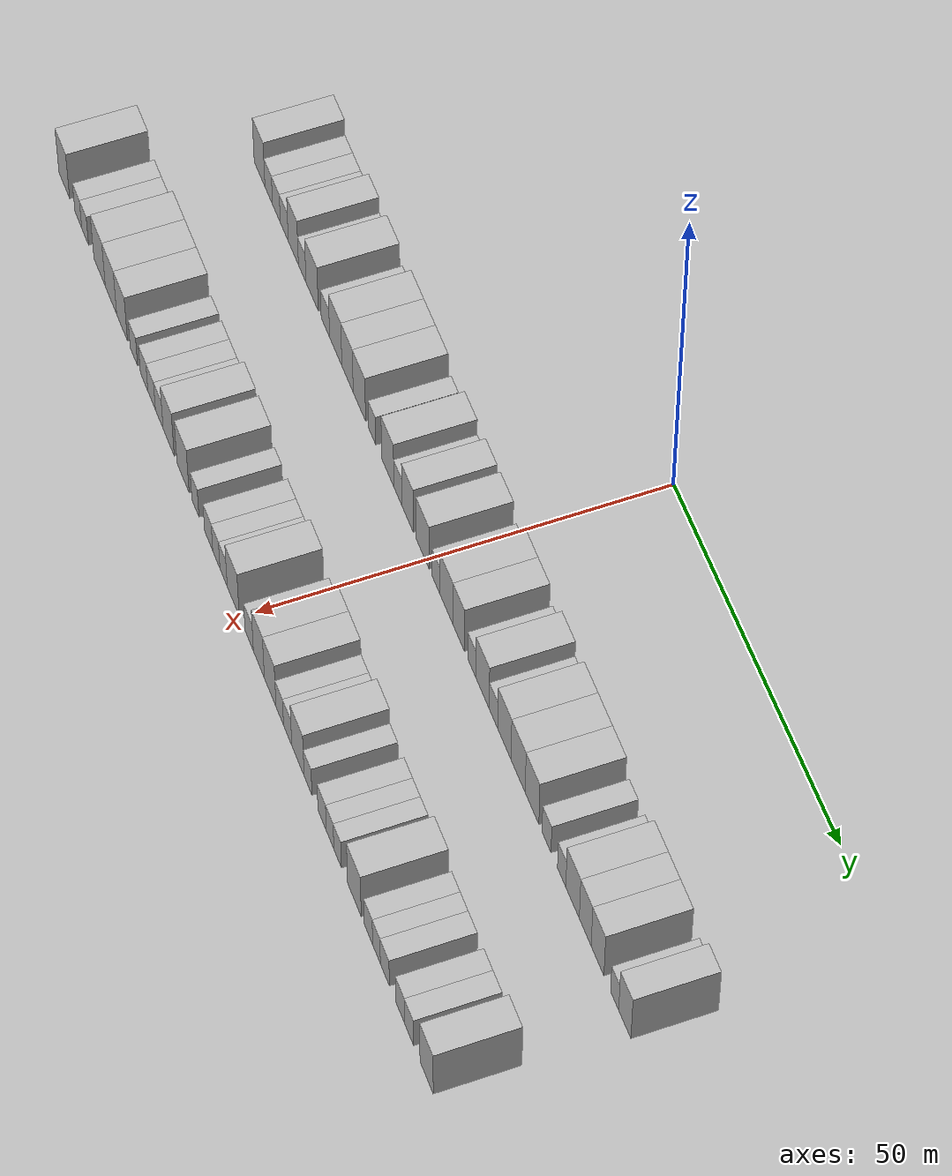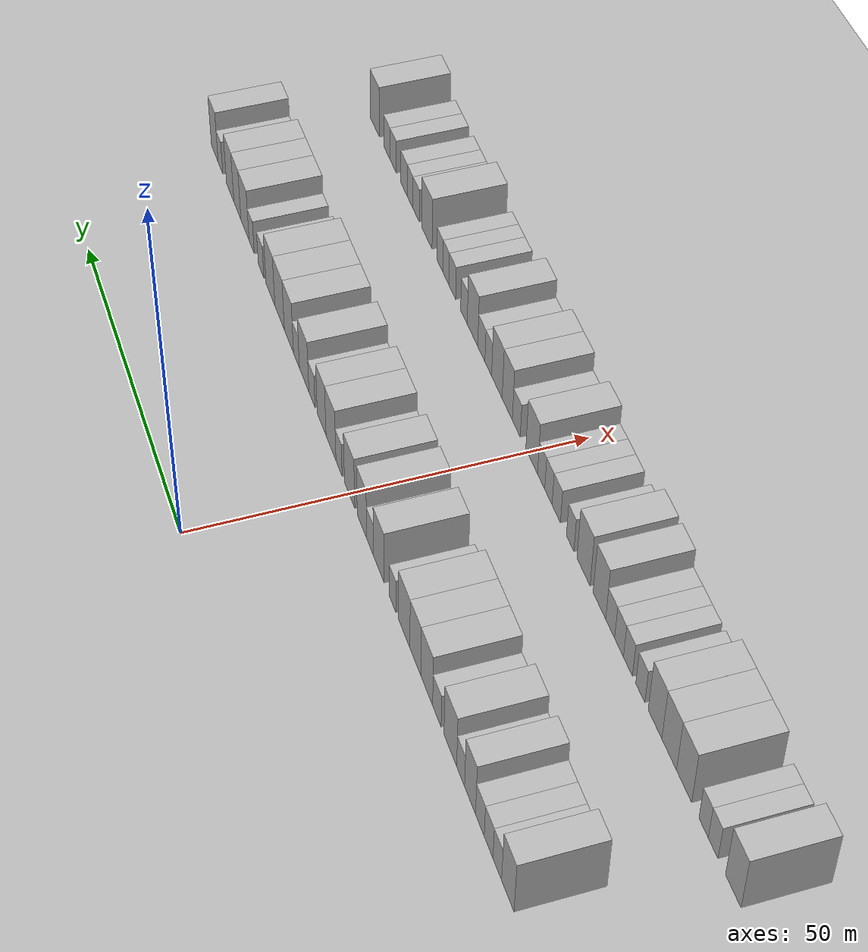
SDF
<sdf version="1.6">
 <world name="default">
  <include><name>ground_plane_1</name><uri>model://HANNAS_ground_plane</uri></include>
  <include>
   <name>ground_plane_2</name>
   <uri>model://HANNAS_ground_plane</uri>
   <pose>100 0 0  0 0 0</pose>
  </include>
  <model name="building_35">
   <static>1</static>
   <pose>25.0000 -57.1080 0 0.000000 0.000000 0.000000</pose>
   <link name="link">
    <pose>0 0 4.50 0 0 0</pose>
    <collision name="collision"><geometry><box><size>10.0000 3.8637 9.0000</size></box></geometry></collision>
    <visual name="visual">
     <cast_shadows>0</cast_shadows>
     <geometry><box><size>10.0000 3.8637 9.0000</size></box></geometry>
     <material>
      <script>
       <uri>model://HANNAS_wall/materials/scripts</uri>
       <uri>model://HANNAS_wall/materials/textures</uri>
       <name>vrc/HANNAS_wall</name>
      </script>
     </material>
    </visual>
   </link>
  </model>
  <model name="building_36">
   <static>1</static>
   <pose>25.0000 -53.8150 0 0.000000 0.000000 0.000000</pose>
   <link name="link">
    <pose>0 0 3.00 0 0 0</pose>
    <collision name="collision"><geometry><box><size>10.0000 2.7222 6.0000</size></box></geometry></collision>
    <visual name="visual">
     <cast_shadows>0</cast_shadows>
     <geometry><box><size>10.0000 2.7222 6.0000</size></box></geometry>
     <material>
      <script>
       <uri>model://HANNAS_wall/materials/scripts</uri>
       <uri>model://HANNAS_wall/materials/textures</uri>
       <name>vrc/HANNAS_wall</name>
      </script>
     </material>
    </visual>
   </link>
  </model>
  <model name="building_37">
   <static>1</static>
   <pose>25.0000 -51.0576 0 0.000000 0.000000 0.000000</pose>
   <link name="link">
    <pose>0 0 3.00 0 0 0</pose>
    <collision name="collision"><geometry><box><size>10.0000 2.7926 6.0000</size></box></geometry></collision>
    <visual name="visual">
     <cast_shadows>0</cast_shadows>
     <geometry><box><size>10.0000 2.7926 6.0000</size></box></geometry>
     <material>
      <script>
       <uri>model://HANNAS_wall/materials/scripts</uri>
       <uri>model://HANNAS_wall/materials/textures</uri>
       <name>vrc/HANNAS_wall</name>
      </script>
     </material>
    </visual>
   </link>
  </model>
  <model name="building_38">
   <static>1</static>
   <pose>25.0000 -48.2400 0 0.000000 0.000000 0.000000</pose>
   <link name="link">
    <pose>0 0 3.00 0 0 0</pose>
    <collision name="collision"><geometry><box><size>10.0000 2.8425 6.0000</size></box></geometry></collision>
    <visual name="visual">
     <cast_shadows>0</cast_shadows>
     <geometry><box><size>10.0000 2.8425 6.0000</size></box></geometry>
     <material>
      <script>
       <uri>model://HANNAS_wall/materials/scripts</uri>
       <uri>model://HANNAS_wall/materials/textures</uri>
       <name>vrc/HANNAS_wall</name>
      </script>
     </material>
    </visual>
   </link>
  </model>
  <model name="building_39">
   <static>1</static>
   <pose>25.0000 -45.0187 0 0.000000 0.000000 0.000000</pose>
   <link name="link">
    <pose>0 0 4.50 0 0 0</pose>
    <collision name="collision"><geometry><box><size>10.0000 3.6001 9.0000</size></box></geometry></collision>
    <visual name="visual">
     <cast_shadows>0</cast_shadows>
     <geometry><box><size>10.0000 3.6001 9.0000</size></box></geometry>
     <material>
      <script>
       <uri>model://HANNAS_wall/materials/scripts</uri>
       <uri>model://HANNAS_wall/materials/textures</uri>
       <name>vrc/HANNAS_wall</name>
      </script>
     </material>
    </visual>
   </link>
  </model>
  <model name="building_40">
   <static>1</static>
   <pose>25.0000 -41.8844 0 0.000000 0.000000 0.000000</pose>
   <link name="link">
    <pose>0 0 3.00 0 0 0</pose>
    <collision name="collision"><geometry><box><size>10.0000 2.6685 6.0000</size></box></geometry></collision>
    <visual name="visual">
     <cast_shadows>0</cast_shadows>
     <geometry><box><size>10.0000 2.6685 6.0000</size></box></geometry>
     <material>
      <script>
       <uri>model://HANNAS_wall/materials/scripts</uri>
       <uri>model://HANNAS_wall/materials/textures</uri>
       <name>vrc/HANNAS_wall</name>
      </script>
     </material>
    </visual>
   </link>
  </model>
  <model name="building_41">
   <static>1</static>
   <pose>25.0000 -38.3859 0 0.000000 0.000000 0.000000</pose>
   <link name="link">
    <pose>0 0 4.50 0 0 0</pose>
    <collision name="collision"><geometry><box><size>10.0000 4.3285 9.0000</size></box></geometry></collision>
    <visual name="visual">
     <cast_shadows>0</cast_shadows>
     <geometry><box><size>10.0000 4.3285 9.0000</size></box></geometry>
     <material>
      <script>
       <uri>model://HANNAS_wall/materials/scripts</uri>
       <uri>model://HANNAS_wall/materials/textures</uri>
       <name>vrc/HANNAS_wall</name>
      </script>
     </material>
    </visual>
   </link>
  </model>
  <model name="building_42">
   <static>1</static>
   <pose>25.0000 -33.7441 0 0.000000 0.000000 0.000000</pose>
   <link name="link">
    <pose>0 0 3.00 0 0 0</pose>
    <collision name="collision"><geometry><box><size>10.0000 2.9551 6.0000</size></box></geometry></collision>
    <visual name="visual">
     <cast_shadows>0</cast_shadows>
     <geometry><box><size>10.0000 2.9551 6.0000</size></box></geometry>
     <material>
      <script>
       <uri>model://HANNAS_wall/materials/scripts</uri>
       <uri>model://HANNAS_wall/materials/textures</uri>
       <name>vrc/HANNAS_wall</name>
      </script>
     </material>
    </visual>
   </link>
  </model>
  <model name="building_43">
   <static>1</static>
   <pose>25.0000 -30.1479 0 0.000000 0.000000 0.000000</pose>
   <link name="link">
    <pose>0 0 4.50 0 0 0</pose>
    <collision name="collision"><geometry><box><size>10.0000 4.2372 9.0000</size></box></geometry></collision>
    <visual name="visual">
     <cast_shadows>0</cast_shadows>
     <geometry><box><size>10.0000 4.2372 9.0000</size></box></geometry>
     <material>
      <script>
       <uri>model://HANNAS_wall/materials/scripts</uri>
       <uri>model://HANNAS_wall/materials/textures</uri>
       <name>vrc/HANNAS_wall</name>
      </script>
     </material>
    </visual>
   </link>
  </model>
  <model name="building_44">
   <static>1</static>
   <pose>25.0000 -26.0718 0 0.000000 0.000000 0.000000</pose>
   <link name="link">
    <pose>0 0 4.50 0 0 0</pose>
    <collision name="collision"><geometry><box><size>10.0000 3.9150 9.0000</size></box></geometry></collision>
    <visual name="visual">
     <cast_shadows>0</cast_shadows>
     <geometry><box><size>10.0000 3.9150 9.0000</size></box></geometry>
     <material>
      <script>
       <uri>model://HANNAS_wall/materials/scripts</uri>
       <uri>model://HANNAS_wall/materials/textures</uri>
       <name>vrc/HANNAS_wall</name>
      </script>
     </material>
    </visual>
   </link>
  </model>
  <model name="building_45">
   <static>1</static>
   <pose>25.0000 -21.9916 0 0.000000 0.000000 0.000000</pose>
   <link name="link">
    <pose>0 0 4.50 0 0 0</pose>
    <collision name="collision"><geometry><box><size>10.0000 4.2454 9.0000</size></box></geometry></collision>
    <visual name="visual">
     <cast_shadows>0</cast_shadows>
     <geometry><box><size>10.0000 4.2454 9.0000</size></box></geometry>
     <material>
      <script>
       <uri>model://HANNAS_wall/materials/scripts</uri>
       <uri>model://HANNAS_wall/materials/textures</uri>
       <name>vrc/HANNAS_wall</name>
      </script>
     </material>
    </visual>
   </link>
  </model>
  <model name="building_46">
   <static>1</static>
   <pose>25.0000 -17.6397 0 0.000000 0.000000 0.000000</pose>
   <link name="link">
    <pose>0 0 3.00 0 0 0</pose>
    <collision name="collision"><geometry><box><size>10.0000 2.4583 6.0000</size></box></geometry></collision>
    <visual name="visual">
     <cast_shadows>0</cast_shadows>
     <geometry><box><size>10.0000 2.4583 6.0000</size></box></geometry>
     <material>
      <script>
       <uri>model://HANNAS_wall/materials/scripts</uri>
       <uri>model://HANNAS_wall/materials/textures</uri>
       <name>vrc/HANNAS_wall</name>
      </script>
     </material>
    </visual>
   </link>
  </model>
  <model name="building_47">
   <static>1</static>
   <pose>25.0000 -12.3555 0 0.000000 0.000000 0.000000</pose>
   <link name="link">
    <pose>0 0 4.50 0 0 0</pose>
    <collision name="collision"><geometry><box><size>10.0000 4.1102 9.0000</size></box></geometry></collision>
    <visual name="visual">
     <cast_shadows>0</cast_shadows>
     <geometry><box><size>10.0000 4.1102 9.0000</size></box></geometry>
     <material>
      <script>
       <uri>model://HANNAS_wall/materials/scripts</uri>
       <uri>model://HANNAS_wall/materials/textures</uri>
       <name>vrc/HANNAS_wall</name>
      </script>
     </material>
    </visual>
   </link>
  </model>
  <model name="building_48">
   <static>1</static>
   <pose>25.0000 -8.9529 0 0.000000 0.000000 0.000000</pose>
   <link name="link">
    <pose>0 0 3.00 0 0 0</pose>
    <collision name="collision"><geometry><box><size>10.0000 2.6950 6.0000</size></box></geometry></collision>
    <visual name="visual">
     <cast_shadows>0</cast_shadows>
     <geometry><box><size>10.0000 2.6950 6.0000</size></box></geometry>
     <material>
      <script>
       <uri>model://HANNAS_wall/materials/scripts</uri>
       <uri>model://HANNAS_wall/materials/textures</uri>
       <name>vrc/HANNAS_wall</name>
      </script>
     </material>
    </visual>
   </link>
  </model>
  <model name="building_49">
   <static>1</static>
   <pose>25.0000 -5.7064 0 0.000000 0.000000 0.000000</pose>
   <link name="link">
    <pose>0 0 4.50 0 0 0</pose>
    <collision name="collision"><geometry><box><size>10.0000 3.7981 9.0000</size></box></geometry></collision>
    <visual name="visual">
     <cast_shadows>0</cast_shadows>
     <geometry><box><size>10.0000 3.7981 9.0000</size></box></geometry>
     <material>
      <script>
       <uri>model://HANNAS_wall/materials/scripts</uri>
       <uri>model://HANNAS_wall/materials/textures</uri>
       <name>vrc/HANNAS_wall</name>
      </script>
     </material>
    </visual>
   </link>
  </model>
  <model name="building_50">
   <static>1</static>
   <pose>25.0000 -0.6873 0 0.000000 0.000000 0.000000</pose>
   <link name="link">
    <pose>0 0 4.50 0 0 0</pose>
    <collision name="collision"><geometry><box><size>10.0000 4.2400 9.0000</size></box></geometry></collision>
    <visual name="visual">
     <cast_shadows>0</cast_shadows>
     <geometry><box><size>10.0000 4.2400 9.0000</size></box></geometry>
     <material>
      <script>
       <uri>model://HANNAS_wall/materials/scripts</uri>
       <uri>model://HANNAS_wall/materials/textures</uri>
       <name>vrc/HANNAS_wall</name>
      </script>
     </material>
    </visual>
   </link>
  </model>
  <model name="building_51">
   <static>1</static>
   <pose>25.0000 3.7216 0 0.000000 0.000000 0.000000</pose>
   <link name="link">
    <pose>0 0 3.00 0 0 0</pose>
    <collision name="collision"><geometry><box><size>10.0000 2.5778 6.0000</size></box></geometry></collision>
    <visual name="visual">
     <cast_shadows>0</cast_shadows>
     <geometry><box><size>10.0000 2.5778 6.0000</size></box></geometry>
     <material>
      <script>
       <uri>model://HANNAS_wall/materials/scripts</uri>
       <uri>model://HANNAS_wall/materials/textures</uri>
       <name>vrc/HANNAS_wall</name>
      </script>
     </material>
    </visual>
   </link>
  </model>
  <model name="building_52">
   <static>1</static>
   <pose>25.0000 7.1169 0 0.000000 0.000000 0.000000</pose>
   <link name="link">
    <pose>0 0 4.50 0 0 0</pose>
    <collision name="collision"><geometry><box><size>10.0000 4.2129 9.0000</size></box></geometry></collision>
    <visual name="visual">
     <cast_shadows>0</cast_shadows>
     <geometry><box><size>10.0000 4.2129 9.0000</size></box></geometry>
     <material>
      <script>
       <uri>model://HANNAS_wall/materials/scripts</uri>
       <uri>model://HANNAS_wall/materials/textures</uri>
       <name>vrc/HANNAS_wall</name>
      </script>
     </material>
    </visual>
   </link>
  </model>
  <model name="building_53">
   <static>1</static>
   <pose>25.0000 11.1153 0 0.000000 0.000000 0.000000</pose>
   <link name="link">
    <pose>0 0 4.50 0 0 0</pose>
    <collision name="collision"><geometry><box><size>10.0000 3.7839 9.0000</size></box></geometry></collision>
    <visual name="visual">
     <cast_shadows>0</cast_shadows>
     <geometry><box><size>10.0000 3.7839 9.0000</size></box></geometry>
     <material>
      <script>
       <uri>model://HANNAS_wall/materials/scripts</uri>
       <uri>model://HANNAS_wall/materials/textures</uri>
       <name>vrc/HANNAS_wall</name>
      </script>
     </material>
    </visual>
   </link>
  </model>
  <model name="building_54">
   <static>1</static>
   <pose>25.0000 15.3685 0 0.000000 0.000000 0.000000</pose>
   <link name="link">
    <pose>0 0 3.00 0 0 0</pose>
    <collision name="collision"><geometry><box><size>10.0000 2.7225 6.0000</size></box></geometry></collision>
    <visual name="visual">
     <cast_shadows>0</cast_shadows>
     <geometry><box><size>10.0000 2.7225 6.0000</size></box></geometry>
     <material>
      <script>
       <uri>model://HANNAS_wall/materials/scripts</uri>
       <uri>model://HANNAS_wall/materials/textures</uri>
       <name>vrc/HANNAS_wall</name>
      </script>
     </material>
    </visual>
   </link>
  </model>
  <model name="building_55">
   <static>1</static>
   <pose>25.0000 18.8446 0 0.000000 0.000000 0.000000</pose>
   <link name="link">
    <pose>0 0 4.50 0 0 0</pose>
    <collision name="collision"><geometry><box><size>10.0000 4.2296 9.0000</size></box></geometry></collision>
    <visual name="visual">
     <cast_shadows>0</cast_shadows>
     <geometry><box><size>10.0000 4.2296 9.0000</size></box></geometry>
     <material>
      <script>
       <uri>model://HANNAS_wall/materials/scripts</uri>
       <uri>model://HANNAS_wall/materials/textures</uri>
       <name>vrc/HANNAS_wall</name>
      </script>
     </material>
    </visual>
   </link>
  </model>
  <model name="building_56">
   <static>1</static>
   <pose>25.0000 22.3115 0 0.000000 0.000000 0.000000</pose>
   <link name="link">
    <pose>0 0 3.00 0 0 0</pose>
    <collision name="collision"><geometry><box><size>10.0000 2.7043 6.0000</size></box></geometry></collision>
    <visual name="visual">
     <cast_shadows>0</cast_shadows>
     <geometry><box><size>10.0000 2.7043 6.0000</size></box></geometry>
     <material>
      <script>
       <uri>model://HANNAS_wall/materials/scripts</uri>
       <uri>model://HANNAS_wall/materials/textures</uri>
       <name>vrc/HANNAS_wall</name>
      </script>
     </material>
    </visual>
   </link>
  </model>
  <model name="building_57">
   <static>1</static>
   <pose>25.0000 25.7868 0 0.000000 0.000000 0.000000</pose>
   <link name="link">
    <pose>0 0 4.50 0 0 0</pose>
    <collision name="collision"><geometry><box><size>10.0000 4.2463 9.0000</size></box></geometry></collision>
    <visual name="visual">
     <cast_shadows>0</cast_shadows>
     <geometry><box><size>10.0000 4.2463 9.0000</size></box></geometry>
     <material>
      <script>
       <uri>model://HANNAS_wall/materials/scripts</uri>
       <uri>model://HANNAS_wall/materials/textures</uri>
       <name>vrc/HANNAS_wall</name>
      </script>
     </material>
    </visual>
   </link>
  </model>
  <model name="building_58">
   <static>1</static>
   <pose>25.0000 30.1371 0 0.000000 0.000000 0.000000</pose>
   <link name="link">
    <pose>0 0 4.50 0 0 0</pose>
    <collision name="collision"><geometry><box><size>10.0000 4.4542 9.0000</size></box></geometry></collision>
    <visual name="visual">
     <cast_shadows>0</cast_shadows>
     <geometry><box><size>10.0000 4.4542 9.0000</size></box></geometry>
     <material>
      <script>
       <uri>model://HANNAS_wall/materials/scripts</uri>
       <uri>model://HANNAS_wall/materials/textures</uri>
       <name>vrc/HANNAS_wall</name>
      </script>
     </material>
    </visual>
   </link>
  </model>
  <model name="building_59">
   <static>1</static>
   <pose>25.0000 34.4977 0 0.000000 0.000000 0.000000</pose>
   <link name="link">
    <pose>0 0 4.50 0 0 0</pose>
    <collision name="collision"><geometry><box><size>10.0000 4.2669 9.0000</size></box></geometry></collision>
    <visual name="visual">
     <cast_shadows>0</cast_shadows>
     <geometry><box><size>10.0000 4.2669 9.0000</size></box></geometry>
     <material>
      <script>
       <uri>model://HANNAS_wall/materials/scripts</uri>
       <uri>model://HANNAS_wall/materials/textures</uri>
       <name>vrc/HANNAS_wall</name>
      </script>
     </material>
    </visual>
   </link>
  </model>
  <model name="building_60">
   <static>1</static>
   <pose>25.0000 39.0151 0 0.000000 0.000000 0.000000</pose>
   <link name="link">
    <pose>0 0 3.00 0 0 0</pose>
    <collision name="collision"><geometry><box><size>10.0000 2.7680 6.0000</size></box></geometry></collision>
    <visual name="visual">
     <cast_shadows>0</cast_shadows>
     <geometry><box><size>10.0000 2.7680 6.0000</size></box></geometry>
     <material>
      <script>
       <uri>model://HANNAS_wall/materials/scripts</uri>
       <uri>model://HANNAS_wall/materials/textures</uri>
       <name>vrc/HANNAS_wall</name>
      </script>
     </material>
    </visual>
   </link>
  </model>
  <model name="building_61">
   <static>1</static>
   <pose>25.0000 43.6849 0 0.000000 0.000000 0.000000</pose>
   <link name="link">
    <pose>0 0 3.00 0 0 0</pose>
    <collision name="collision"><geometry><box><size>10.0000 2.5715 6.0000</size></box></geometry></collision>
    <visual name="visual">
     <cast_shadows>0</cast_shadows>
     <geometry><box><size>10.0000 2.5715 6.0000</size></box></geometry>
     <material>
      <script>
       <uri>model://HANNAS_wall/materials/scripts</uri>
       <uri>model://HANNAS_wall/materials/textures</uri>
       <name>vrc/HANNAS_wall</name>
      </script>
     </material>
    </visual>
   </link>
  </model>
  <model name="building_62">
   <static>1</static>
   <pose>25.0000 47.0377 0 0.000000 0.000000 0.000000</pose>
   <link name="link">
    <pose>0 0 4.50 0 0 0</pose>
    <collision name="collision"><geometry><box><size>10.0000 4.1342 9.0000</size></box></geometry></collision>
    <visual name="visual">
     <cast_shadows>0</cast_shadows>
     <geometry><box><size>10.0000 4.1342 9.0000</size></box></geometry>
     <material>
      <script>
       <uri>model://HANNAS_wall/materials/scripts</uri>
       <uri>model://HANNAS_wall/materials/textures</uri>
       <name>vrc/HANNAS_wall</name>
      </script>
     </material>
    </visual>
   </link>
  </model>
  <model name="building_63">
   <static>1</static>
   <pose>25.0000 50.9089 0 0.000000 0.000000 0.000000</pose>
   <link name="link">
    <pose>0 0 4.50 0 0 0</pose>
    <collision name="collision"><geometry><box><size>10.0000 3.6083 9.0000</size></box></geometry></collision>
    <visual name="visual">
     <cast_shadows>0</cast_shadows>
     <geometry><box><size>10.0000 3.6083 9.0000</size></box></geometry>
     <material>
      <script>
       <uri>model://HANNAS_wall/materials/scripts</uri>
       <uri>model://HANNAS_wall/materials/textures</uri>
       <name>vrc/HANNAS_wall</name>
      </script>
     </material>
    </visual>
   </link>
  </model>
  <model name="building_64">
   <static>1</static>
   <pose>25.0000 54.6409 0 0.000000 0.000000 0.000000</pose>
   <link name="link">
    <pose>0 0 4.50 0 0 0</pose>
    <collision name="collision"><geometry><box><size>10.0000 3.8558 9.0000</size></box></geometry></collision>
    <visual name="visual">
     <cast_shadows>0</cast_shadows>
     <geometry><box><size>10.0000 3.8558 9.0000</size></box></geometry>
     <material>
      <script>
       <uri>model://HANNAS_wall/materials/scripts</uri>
       <uri>model://HANNAS_wall/materials/textures</uri>
       <name>vrc/HANNAS_wall</name>
      </script>
     </material>
    </visual>
   </link>
  </model>
  <model name="building_65">
   <static>1</static>
   <pose>25.0000 59.7868 0 0.000000 0.000000 0.000000</pose>
   <link name="link">
    <pose>0 0 3.00 0 0 0</pose>
    <collision name="collision"><geometry><box><size>10.0000 2.4358 6.0000</size></box></geometry></collision>
    <visual name="visual">
     <cast_shadows>0</cast_shadows>
     <geometry><box><size>10.0000 2.4358 6.0000</size></box></geometry>
     <material>
      <script>
       <uri>model://HANNAS_wall/materials/scripts</uri>
       <uri>model://HANNAS_wall/materials/textures</uri>
       <name>vrc/HANNAS_wall</name>
      </script>
     </material>
    </visual>
   </link>
  </model>
  <model name="building_66">
   <static>1</static>
   <pose>25.0000 62.8325 0 0.000000 0.000000 0.000000</pose>
   <link name="link">
    <pose>0 0 4.50 0 0 0</pose>
    <collision name="collision"><geometry><box><size>10.0000 3.6555 9.0000</size></box></geometry></collision>
    <visual name="visual">
     <cast_shadows>0</cast_shadows>
     <geometry><box><size>10.0000 3.6555 9.0000</size></box></geometry>
     <material>
      <script>
       <uri>model://HANNAS_wall/materials/scripts</uri>
       <uri>model://HANNAS_wall/materials/textures</uri>
       <name>vrc/HANNAS_wall</name>
      </script>
     </material>
    </visual>
   </link>
  </model>
  <model name="building_129">
   <static>1</static>
   <pose>47.0000 -63.3860 0 0.000000 0.000000 0.000000</pose>
   <link name="link">
    <pose>0 0 4.50 0 0 0</pose>
    <collision name="collision"><geometry><box><size>10.0000 4.0671 9.0000</size></box></geometry></collision>
    <visual name="visual">
     <cast_shadows>0</cast_shadows>
     <geometry><box><size>10.0000 4.0671 9.0000</size></box></geometry>
     <material>
      <script>
       <uri>model://HANNAS_wall/materials/scripts</uri>
       <uri>model://HANNAS_wall/materials/textures</uri>
       <name>vrc/HANNAS_wall</name>
      </script>
     </material>
    </visual>
   </link>
  </model>
  <model name="building_130">
   <static>1</static>
   <pose>47.0000 -58.0487 0 0.000000 0.000000 0.000000</pose>
   <link name="link">
    <pose>0 0 3.00 0 0 0</pose>
    <collision name="collision"><geometry><box><size>10.0000 2.6074 6.0000</size></box></geometry></collision>
    <visual name="visual">
     <cast_shadows>0</cast_shadows>
     <geometry><box><size>10.0000 2.6074 6.0000</size></box></geometry>
     <material>
      <script>
       <uri>model://HANNAS_wall/materials/scripts</uri>
       <uri>model://HANNAS_wall/materials/textures</uri>
       <name>vrc/HANNAS_wall</name>
      </script>
     </material>
    </visual>
   </link>
  </model>
  <model name="building_131">
   <static>1</static>
   <pose>47.0000 -55.4666 0 0.000000 0.000000 0.000000</pose>
   <link name="link">
    <pose>0 0 3.00 0 0 0</pose>
    <collision name="collision"><geometry><box><size>10.0000 2.5568 6.0000</size></box></geometry></collision>
    <visual name="visual">
     <cast_shadows>0</cast_shadows>
     <geometry><box><size>10.0000 2.5568 6.0000</size></box></geometry>
     <material>
      <script>
       <uri>model://HANNAS_wall/materials/scripts</uri>
       <uri>model://HANNAS_wall/materials/textures</uri>
       <name>vrc/HANNAS_wall</name>
      </script>
     </material>
    </visual>
   </link>
  </model>
  <model name="building_132">
   <static>1</static>
   <pose>47.0000 -50.0542 0 0.000000 0.000000 0.000000</pose>
   <link name="link">
    <pose>0 0 4.50 0 0 0</pose>
    <collision name="collision"><geometry><box><size>10.0000 4.2680 9.0000</size></box></geometry></collision>
    <visual name="visual">
     <cast_shadows>0</cast_shadows>
     <geometry><box><size>10.0000 4.2680 9.0000</size></box></geometry>
     <material>
      <script>
       <uri>model://HANNAS_wall/materials/scripts</uri>
       <uri>model://HANNAS_wall/materials/textures</uri>
       <name>vrc/HANNAS_wall</name>
      </script>
     </material>
    </visual>
   </link>
  </model>
  <model name="building_133">
   <static>1</static>
   <pose>47.0000 -45.8129 0 0.000000 0.000000 0.000000</pose>
   <link name="link">
    <pose>0 0 4.50 0 0 0</pose>
    <collision name="collision"><geometry><box><size>10.0000 4.2147 9.0000</size></box></geometry></collision>
    <visual name="visual">
     <cast_shadows>0</cast_shadows>
     <geometry><box><size>10.0000 4.2147 9.0000</size></box></geometry>
     <material>
      <script>
       <uri>model://HANNAS_wall/materials/scripts</uri>
       <uri>model://HANNAS_wall/materials/textures</uri>
       <name>vrc/HANNAS_wall</name>
      </script>
     </material>
    </visual>
   </link>
  </model>
  <model name="building_134">
   <static>1</static>
   <pose>47.0000 -41.7074 0 0.000000 0.000000 0.000000</pose>
   <link name="link">
    <pose>0 0 4.50 0 0 0</pose>
    <collision name="collision"><geometry><box><size>10.0000 3.9962 9.0000</size></box></geometry></collision>
    <visual name="visual">
     <cast_shadows>0</cast_shadows>
     <geometry><box><size>10.0000 3.9962 9.0000</size></box></geometry>
     <material>
      <script>
       <uri>model://HANNAS_wall/materials/scripts</uri>
       <uri>model://HANNAS_wall/materials/textures</uri>
       <name>vrc/HANNAS_wall</name>
      </script>
     </material>
    </visual>
   </link>
  </model>
  <model name="building_135">
   <static>1</static>
   <pose>47.0000 -37.3533 0 0.000000 0.000000 0.000000</pose>
   <link name="link">
    <pose>0 0 3.00 0 0 0</pose>
    <collision name="collision"><geometry><box><size>10.0000 2.7121 6.0000</size></box></geometry></collision>
    <visual name="visual">
     <cast_shadows>0</cast_shadows>
     <geometry><box><size>10.0000 2.7121 6.0000</size></box></geometry>
     <material>
      <script>
       <uri>model://HANNAS_wall/materials/scripts</uri>
       <uri>model://HANNAS_wall/materials/textures</uri>
       <name>vrc/HANNAS_wall</name>
      </script>
     </material>
    </visual>
   </link>
  </model>
  <model name="building_136">
   <static>1</static>
   <pose>47.0000 -33.6298 0 0.000000 0.000000 0.000000</pose>
   <link name="link">
    <pose>0 0 3.00 0 0 0</pose>
    <collision name="collision"><geometry><box><size>10.0000 2.7350 6.0000</size></box></geometry></collision>
    <visual name="visual">
     <cast_shadows>0</cast_shadows>
     <geometry><box><size>10.0000 2.7350 6.0000</size></box></geometry>
     <material>
      <script>
       <uri>model://HANNAS_wall/materials/scripts</uri>
       <uri>model://HANNAS_wall/materials/textures</uri>
       <name>vrc/HANNAS_wall</name>
      </script>
     </material>
    </visual>
   </link>
  </model>
  <model name="building_137">
   <static>1</static>
   <pose>47.0000 -30.8925 0 0.000000 0.000000 0.000000</pose>
   <link name="link">
    <pose>0 0 3.00 0 0 0</pose>
    <collision name="collision"><geometry><box><size>10.0000 2.7396 6.0000</size></box></geometry></collision>
    <visual name="visual">
     <cast_shadows>0</cast_shadows>
     <geometry><box><size>10.0000 2.7396 6.0000</size></box></geometry>
     <material>
      <script>
       <uri>model://HANNAS_wall/materials/scripts</uri>
       <uri>model://HANNAS_wall/materials/textures</uri>
       <name>vrc/HANNAS_wall</name>
      </script>
     </material>
    </visual>
   </link>
  </model>
  <model name="building_138">
   <static>1</static>
   <pose>47.0000 -28.1283 0 0.000000 0.000000 0.000000</pose>
   <link name="link">
    <pose>0 0 3.00 0 0 0</pose>
    <collision name="collision"><geometry><box><size>10.0000 2.7888 6.0000</size></box></geometry></collision>
    <visual name="visual">
     <cast_shadows>0</cast_shadows>
     <geometry><box><size>10.0000 2.7888 6.0000</size></box></geometry>
     <material>
      <script>
       <uri>model://HANNAS_wall/materials/scripts</uri>
       <uri>model://HANNAS_wall/materials/textures</uri>
       <name>vrc/HANNAS_wall</name>
      </script>
     </material>
    </visual>
   </link>
  </model>
  <model name="building_139">
   <static>1</static>
   <pose>47.0000 -24.7402 0 0.000000 0.000000 0.000000</pose>
   <link name="link">
    <pose>0 0 4.50 0 0 0</pose>
    <collision name="collision"><geometry><box><size>10.0000 3.9874 9.0000</size></box></geometry></collision>
    <visual name="visual">
     <cast_shadows>0</cast_shadows>
     <geometry><box><size>10.0000 3.9874 9.0000</size></box></geometry>
     <material>
      <script>
       <uri>model://HANNAS_wall/materials/scripts</uri>
       <uri>model://HANNAS_wall/materials/textures</uri>
       <name>vrc/HANNAS_wall</name>
      </script>
     </material>
    </visual>
   </link>
  </model>
  <model name="building_140">
   <static>1</static>
   <pose>47.0000 -19.6008 0 0.000000 0.000000 0.000000</pose>
   <link name="link">
    <pose>0 0 4.50 0 0 0</pose>
    <collision name="collision"><geometry><box><size>10.0000 4.2912 9.0000</size></box></geometry></collision>
    <visual name="visual">
     <cast_shadows>0</cast_shadows>
     <geometry><box><size>10.0000 4.2912 9.0000</size></box></geometry>
     <material>
      <script>
       <uri>model://HANNAS_wall/materials/scripts</uri>
       <uri>model://HANNAS_wall/materials/textures</uri>
       <name>vrc/HANNAS_wall</name>
      </script>
     </material>
    </visual>
   </link>
  </model>
  <model name="building_141">
   <static>1</static>
   <pose>47.0000 -15.2036 0 0.000000 0.000000 0.000000</pose>
   <link name="link">
    <pose>0 0 3.00 0 0 0</pose>
    <collision name="collision"><geometry><box><size>10.0000 2.5032 6.0000</size></box></geometry></collision>
    <visual name="visual">
     <cast_shadows>0</cast_shadows>
     <geometry><box><size>10.0000 2.5032 6.0000</size></box></geometry>
     <material>
      <script>
       <uri>model://HANNAS_wall/materials/scripts</uri>
       <uri>model://HANNAS_wall/materials/textures</uri>
       <name>vrc/HANNAS_wall</name>
      </script>
     </material>
    </visual>
   </link>
  </model>
  <model name="building_142">
   <static>1</static>
   <pose>47.0000 -10.5300 0 0.000000 0.000000 0.000000</pose>
   <link name="link">
    <pose>0 0 3.00 0 0 0</pose>
    <collision name="collision"><geometry><box><size>10.0000 2.8439 6.0000</size></box></geometry></collision>
    <visual name="visual">
     <cast_shadows>0</cast_shadows>
     <geometry><box><size>10.0000 2.8439 6.0000</size></box></geometry>
     <material>
      <script>
       <uri>model://HANNAS_wall/materials/scripts</uri>
       <uri>model://HANNAS_wall/materials/textures</uri>
       <name>vrc/HANNAS_wall</name>
      </script>
     </material>
    </visual>
   </link>
  </model>
  <model name="building_143">
   <static>1</static>
   <pose>47.0000 -7.8404 0 0.000000 0.000000 0.000000</pose>
   <link name="link">
    <pose>0 0 3.00 0 0 0</pose>
    <collision name="collision"><geometry><box><size>10.0000 2.5353 6.0000</size></box></geometry></collision>
    <visual name="visual">
     <cast_shadows>0</cast_shadows>
     <geometry><box><size>10.0000 2.5353 6.0000</size></box></geometry>
     <material>
      <script>
       <uri>model://HANNAS_wall/materials/scripts</uri>
       <uri>model://HANNAS_wall/materials/textures</uri>
       <name>vrc/HANNAS_wall</name>
      </script>
     </material>
    </visual>
   </link>
  </model>
  <model name="building_144">
   <static>1</static>
   <pose>47.0000 -5.3086 0 0.000000 0.000000 0.000000</pose>
   <link name="link">
    <pose>0 0 3.00 0 0 0</pose>
    <collision name="collision"><geometry><box><size>10.0000 2.5283 6.0000</size></box></geometry></collision>
    <visual name="visual">
     <cast_shadows>0</cast_shadows>
     <geometry><box><size>10.0000 2.5283 6.0000</size></box></geometry>
     <material>
      <script>
       <uri>model://HANNAS_wall/materials/scripts</uri>
       <uri>model://HANNAS_wall/materials/textures</uri>
       <name>vrc/HANNAS_wall</name>
      </script>
     </material>
    </visual>
   </link>
  </model>
  <model name="building_145">
   <static>1</static>
   <pose>47.0000 -1.9702 0 0.000000 0.000000 0.000000</pose>
   <link name="link">
    <pose>0 0 4.50 0 0 0</pose>
    <collision name="collision"><geometry><box><size>10.0000 4.1486 9.0000</size></box></geometry></collision>
    <visual name="visual">
     <cast_shadows>0</cast_shadows>
     <geometry><box><size>10.0000 4.1486 9.0000</size></box></geometry>
     <material>
      <script>
       <uri>model://HANNAS_wall/materials/scripts</uri>
       <uri>model://HANNAS_wall/materials/textures</uri>
       <name>vrc/HANNAS_wall</name>
      </script>
     </material>
    </visual>
   </link>
  </model>
  <model name="building_146">
   <static>1</static>
   <pose>47.0000 3.5415 0 0.000000 0.000000 0.000000</pose>
   <link name="link">
    <pose>0 0 3.00 0 0 0</pose>
    <collision name="collision"><geometry><box><size>10.0000 2.8749 6.0000</size></box></geometry></collision>
    <visual name="visual">
     <cast_shadows>0</cast_shadows>
     <geometry><box><size>10.0000 2.8749 6.0000</size></box></geometry>
     <material>
      <script>
       <uri>model://HANNAS_wall/materials/scripts</uri>
       <uri>model://HANNAS_wall/materials/textures</uri>
       <name>vrc/HANNAS_wall</name>
      </script>
     </material>
    </visual>
   </link>
  </model>
  <model name="building_147">
   <static>1</static>
   <pose>47.0000 6.8610 0 0.000000 0.000000 0.000000</pose>
   <link name="link">
    <pose>0 0 4.50 0 0 0</pose>
    <collision name="collision"><geometry><box><size>10.0000 3.7640 9.0000</size></box></geometry></collision>
    <visual name="visual">
     <cast_shadows>0</cast_shadows>
     <geometry><box><size>10.0000 3.7640 9.0000</size></box></geometry>
     <material>
      <script>
       <uri>model://HANNAS_wall/materials/scripts</uri>
       <uri>model://HANNAS_wall/materials/textures</uri>
       <name>vrc/HANNAS_wall</name>
      </script>
     </material>
    </visual>
   </link>
  </model>
  <model name="building_148">
   <static>1</static>
   <pose>47.0000 10.7223 0 0.000000 0.000000 0.000000</pose>
   <link name="link">
    <pose>0 0 4.50 0 0 0</pose>
    <collision name="collision"><geometry><box><size>10.0000 3.9586 9.0000</size></box></geometry></collision>
    <visual name="visual">
     <cast_shadows>0</cast_shadows>
     <geometry><box><size>10.0000 3.9586 9.0000</size></box></geometry>
     <material>
      <script>
       <uri>model://HANNAS_wall/materials/scripts</uri>
       <uri>model://HANNAS_wall/materials/textures</uri>
       <name>vrc/HANNAS_wall</name>
      </script>
     </material>
    </visual>
   </link>
  </model>
  <model name="building_149">
   <static>1</static>
   <pose>47.0000 13.9689 0 0.000000 0.000000 0.000000</pose>
   <link name="link">
    <pose>0 0 3.00 0 0 0</pose>
    <collision name="collision"><geometry><box><size>10.0000 2.5345 6.0000</size></box></geometry></collision>
    <visual name="visual">
     <cast_shadows>0</cast_shadows>
     <geometry><box><size>10.0000 2.5345 6.0000</size></box></geometry>
     <material>
      <script>
       <uri>model://HANNAS_wall/materials/scripts</uri>
       <uri>model://HANNAS_wall/materials/textures</uri>
       <name>vrc/HANNAS_wall</name>
      </script>
     </material>
    </visual>
   </link>
  </model>
  <model name="building_150">
   <static>1</static>
   <pose>47.0000 16.6264 0 0.000000 0.000000 0.000000</pose>
   <link name="link">
    <pose>0 0 3.00 0 0 0</pose>
    <collision name="collision"><geometry><box><size>10.0000 2.7805 6.0000</size></box></geometry></collision>
    <visual name="visual">
     <cast_shadows>0</cast_shadows>
     <geometry><box><size>10.0000 2.7805 6.0000</size></box></geometry>
     <material>
      <script>
       <uri>model://HANNAS_wall/materials/scripts</uri>
       <uri>model://HANNAS_wall/materials/textures</uri>
       <name>vrc/HANNAS_wall</name>
      </script>
     </material>
    </visual>
   </link>
  </model>
  <model name="building_151">
   <static>1</static>
   <pose>47.0000 20.0771 0 0.000000 0.000000 0.000000</pose>
   <link name="link">
    <pose>0 0 4.50 0 0 0</pose>
    <collision name="collision"><geometry><box><size>10.0000 4.1210 9.0000</size></box></geometry></collision>
    <visual name="visual">
     <cast_shadows>0</cast_shadows>
     <geometry><box><size>10.0000 4.1210 9.0000</size></box></geometry>
     <material>
      <script>
       <uri>model://HANNAS_wall/materials/scripts</uri>
       <uri>model://HANNAS_wall/materials/textures</uri>
       <name>vrc/HANNAS_wall</name>
      </script>
     </material>
    </visual>
   </link>
  </model>
  <model name="building_152">
   <static>1</static>
   <pose>47.0000 23.4352 0 0.000000 0.000000 0.000000</pose>
   <link name="link">
    <pose>0 0 3.00 0 0 0</pose>
    <collision name="collision"><geometry><box><size>10.0000 2.5950 6.0000</size></box></geometry></collision>
    <visual name="visual">
     <cast_shadows>0</cast_shadows>
     <geometry><box><size>10.0000 2.5950 6.0000</size></box></geometry>
     <material>
      <script>
       <uri>model://HANNAS_wall/materials/scripts</uri>
       <uri>model://HANNAS_wall/materials/textures</uri>
       <name>vrc/HANNAS_wall</name>
      </script>
     </material>
    </visual>
   </link>
  </model>
  <model name="building_153">
   <static>1</static>
   <pose>47.0000 28.1102 0 0.000000 0.000000 0.000000</pose>
   <link name="link">
    <pose>0 0 3.00 0 0 0</pose>
    <collision name="collision"><geometry><box><size>10.0000 2.7551 6.0000</size></box></geometry></collision>
    <visual name="visual">
     <cast_shadows>0</cast_shadows>
     <geometry><box><size>10.0000 2.7551 6.0000</size></box></geometry>
     <material>
      <script>
       <uri>model://HANNAS_wall/materials/scripts</uri>
       <uri>model://HANNAS_wall/materials/textures</uri>
       <name>vrc/HANNAS_wall</name>
      </script>
     </material>
    </visual>
   </link>
  </model>
  <model name="building_154">
   <static>1</static>
   <pose>47.0000 30.7306 0 0.000000 0.000000 0.000000</pose>
   <link name="link">
    <pose>0 0 3.00 0 0 0</pose>
    <collision name="collision"><geometry><box><size>10.0000 2.4857 6.0000</size></box></geometry></collision>
    <visual name="visual">
     <cast_shadows>0</cast_shadows>
     <geometry><box><size>10.0000 2.4857 6.0000</size></box></geometry>
     <material>
      <script>
       <uri>model://HANNAS_wall/materials/scripts</uri>
       <uri>model://HANNAS_wall/materials/textures</uri>
       <name>vrc/HANNAS_wall</name>
      </script>
     </material>
    </visual>
   </link>
  </model>
  <model name="building_155">
   <static>1</static>
   <pose>47.0000 33.2111 0 0.000000 0.000000 0.000000</pose>
   <link name="link">
    <pose>0 0 3.00 0 0 0</pose>
    <collision name="collision"><geometry><box><size>10.0000 2.4753 6.0000</size></box></geometry></collision>
    <visual name="visual">
     <cast_shadows>0</cast_shadows>
     <geometry><box><size>10.0000 2.4753 6.0000</size></box></geometry>
     <material>
      <script>
       <uri>model://HANNAS_wall/materials/scripts</uri>
       <uri>model://HANNAS_wall/materials/textures</uri>
       <name>vrc/HANNAS_wall</name>
      </script>
     </material>
    </visual>
   </link>
  </model>
  <model name="building_156">
   <static>1</static>
   <pose>47.0000 38.6599 0 0.000000 0.000000 0.000000</pose>
   <link name="link">
    <pose>0 0 4.50 0 0 0</pose>
    <collision name="collision"><geometry><box><size>10.0000 4.4224 9.0000</size></box></geometry></collision>
    <visual name="visual">
     <cast_shadows>0</cast_shadows>
     <geometry><box><size>10.0000 4.4224 9.0000</size></box></geometry>
     <material>
      <script>
       <uri>model://HANNAS_wall/materials/scripts</uri>
       <uri>model://HANNAS_wall/materials/textures</uri>
       <name>vrc/HANNAS_wall</name>
      </script>
     </material>
    </visual>
   </link>
  </model>
  <model name="building_157">
   <static>1</static>
   <pose>47.0000 43.2160 0 0.000000 0.000000 0.000000</pose>
   <link name="link">
    <pose>0 0 3.00 0 0 0</pose>
    <collision name="collision"><geometry><box><size>10.0000 2.6897 6.0000</size></box></geometry></collision>
    <visual name="visual">
     <cast_shadows>0</cast_shadows>
     <geometry><box><size>10.0000 2.6897 6.0000</size></box></geometry>
     <material>
      <script>
       <uri>model://HANNAS_wall/materials/scripts</uri>
       <uri>model://HANNAS_wall/materials/textures</uri>
       <name>vrc/HANNAS_wall</name>
      </script>
     </material>
    </visual>
   </link>
  </model>
  <model name="building_158">
   <static>1</static>
   <pose>47.0000 45.7959 0 0.000000 0.000000 0.000000</pose>
   <link name="link">
    <pose>0 0 3.00 0 0 0</pose>
    <collision name="collision"><geometry><box><size>10.0000 2.4700 6.0000</size></box></geometry></collision>
    <visual name="visual">
     <cast_shadows>0</cast_shadows>
     <geometry><box><size>10.0000 2.4700 6.0000</size></box></geometry>
     <material>
      <script>
       <uri>model://HANNAS_wall/materials/scripts</uri>
       <uri>model://HANNAS_wall/materials/textures</uri>
       <name>vrc/HANNAS_wall</name>
      </script>
     </material>
    </visual>
   </link>
  </model>
  <model name="building_159">
   <static>1</static>
   <pose>47.0000 48.4660 0 0.000000 0.000000 0.000000</pose>
   <link name="link">
    <pose>0 0 3.00 0 0 0</pose>
    <collision name="collision"><geometry><box><size>10.0000 2.8702 6.0000</size></box></geometry></collision>
    <visual name="visual">
     <cast_shadows>0</cast_shadows>
     <geometry><box><size>10.0000 2.8702 6.0000</size></box></geometry>
     <material>
      <script>
       <uri>model://HANNAS_wall/materials/scripts</uri>
       <uri>model://HANNAS_wall/materials/textures</uri>
       <name>vrc/HANNAS_wall</name>
      </script>
     </material>
    </visual>
   </link>
  </model>
  <model name="building_160">
   <static>1</static>
   <pose>47.0000 53.3058 0 0.000000 0.000000 0.000000</pose>
   <link name="link">
    <pose>0 0 3.00 0 0 0</pose>
    <collision name="collision"><geometry><box><size>10.0000 2.8096 6.0000</size></box></geometry></collision>
    <visual name="visual">
     <cast_shadows>0</cast_shadows>
     <geometry><box><size>10.0000 2.8096 6.0000</size></box></geometry>
     <material>
      <script>
       <uri>model://HANNAS_wall/materials/scripts</uri>
       <uri>model://HANNAS_wall/materials/textures</uri>
       <name>vrc/HANNAS_wall</name>
      </script>
     </material>
    </visual>
   </link>
  </model>
  <model name="building_161">
   <static>1</static>
   <pose>47.0000 56.1421 0 0.000000 0.000000 0.000000</pose>
   <link name="link">
    <pose>0 0 3.00 0 0 0</pose>
    <collision name="collision"><geometry><box><size>10.0000 2.8629 6.0000</size></box></geometry></collision>
    <visual name="visual">
     <cast_shadows>0</cast_shadows>
     <geometry><box><size>10.0000 2.8629 6.0000</size></box></geometry>
     <material>
      <script>
       <uri>model://HANNAS_wall/materials/scripts</uri>
       <uri>model://HANNAS_wall/materials/textures</uri>
       <name>vrc/HANNAS_wall</name>
      </script>
     </material>
    </visual>
   </link>
  </model>
  <model name="building_162">
   <static>1</static>
   <pose>47.0000 61.6407 0 0.000000 0.000000 0.000000</pose>
   <link name="link">
    <pose>0 0 4.50 0 0 0</pose>
    <collision name="collision"><geometry><box><size>10.0000 4.1342 9.0000</size></box></geometry></collision>
    <visual name="visual">
     <cast_shadows>0</cast_shadows>
     <geometry><box><size>10.0000 4.1342 9.0000</size></box></geometry>
     <material>
      <script>
       <uri>model://HANNAS_wall/materials/scripts</uri>
       <uri>model://HANNAS_wall/materials/textures</uri>
       <name>vrc/HANNAS_wall</name>
      </script>
     </material>
    </visual>
   </link>
  </model>
 </world>
</sdf>
